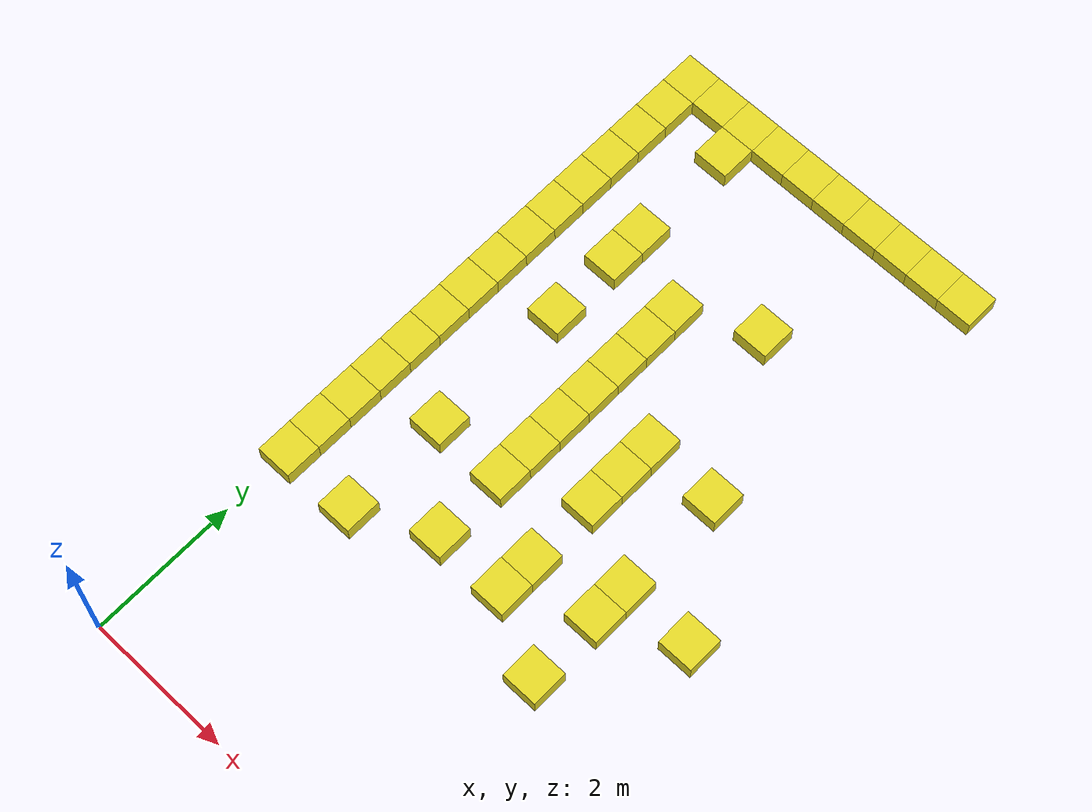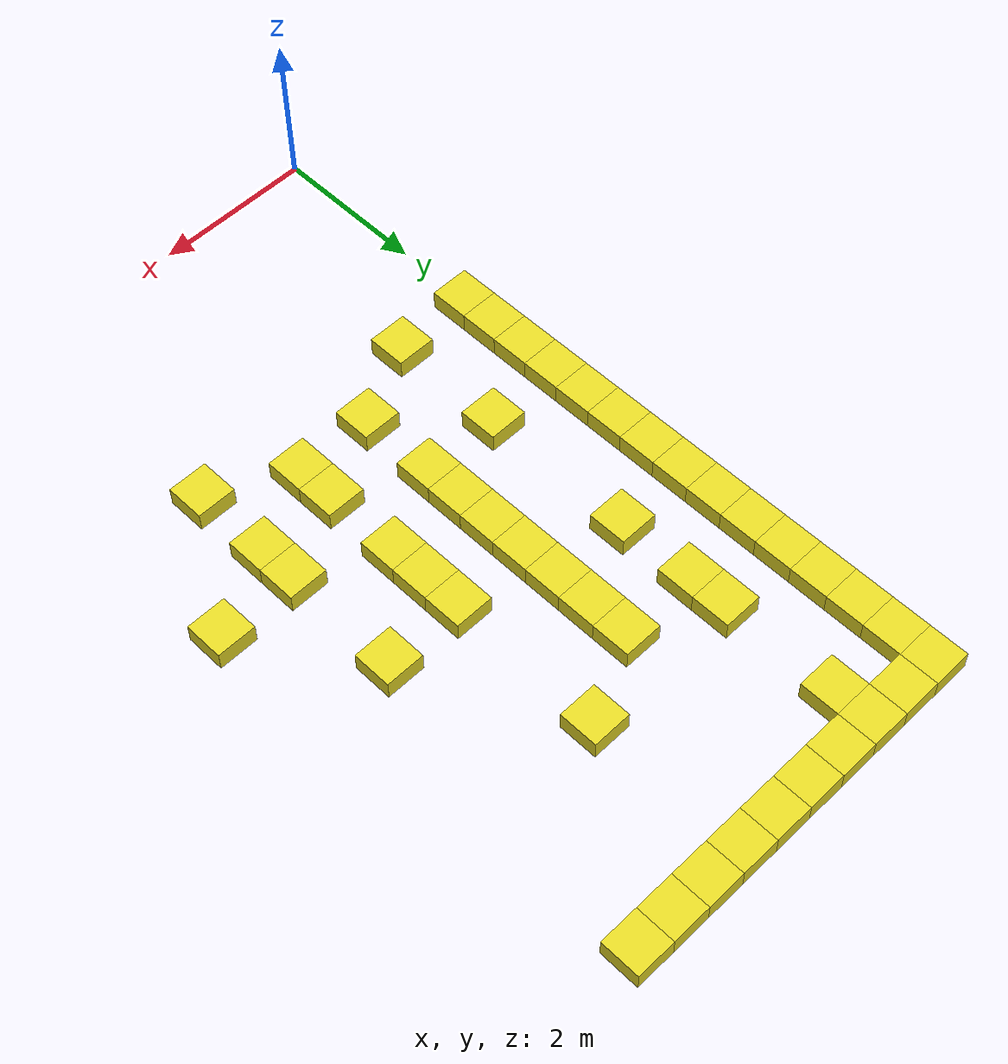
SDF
<sdf version="1.5">
 <world name="default">
  <include><uri>model://sun</uri></include>
  <model name="unit_box_30">
   <pose>0.000000 3.500000 0 0 -0 0</pose>
   <link name="link">
    <inertial>
     <mass>1</mass>
     <inertia><ixx>1</ixx><ixy>0</ixy><ixz>0</ixz><iyy>1</iyy><iyz>0</iyz><izz>1</izz></inertia>
    </inertial>
    <collision name="collision">
     <geometry><box><size>0.500000 0.500000 0.250000</size></box></geometry>
    </collision>
    <visual name="visual">
     <geometry><box><size>0.500000 0.500000 0.250000</size></box></geometry>
     <material>
      <script><uri>file://media/materials/scripts/gazebo.material</uri><name>Gazebo/Yellow</name></script>
     </material>
    </visual>
    <velocity_decay><linear>0</linear><angular>0</angular></velocity_decay>
   </link>
   <static>1</static>
  </model>
  <model name="unit_box_31">
   <pose>0.000000 4.000000 0 0 -0 0</pose>
   <link name="link">
    <inertial>
     <mass>1</mass>
     <inertia><ixx>1</ixx><ixy>0</ixy><ixz>0</ixz><iyy>1</iyy><iyz>0</iyz><izz>1</izz></inertia>
    </inertial>
    <collision name="collision">
     <geometry><box><size>0.500000 0.500000 0.250000</size></box></geometry>
    </collision>
    <visual name="visual">
     <geometry><box><size>0.500000 0.500000 0.250000</size></box></geometry>
     <material>
      <script><uri>file://media/materials/scripts/gazebo.material</uri><name>Gazebo/Yellow</name></script>
     </material>
    </visual>
    <velocity_decay><linear>0</linear><angular>0</angular></velocity_decay>
   </link>
   <static>1</static>
  </model>
  <model name="unit_box_32">
   <pose>0.000000 4.500000 0 0 -0 0</pose>
   <link name="link">
    <inertial>
     <mass>1</mass>
     <inertia><ixx>1</ixx><ixy>0</ixy><ixz>0</ixz><iyy>1</iyy><iyz>0</iyz><izz>1</izz></inertia>
    </inertial>
    <collision name="collision">
     <geometry><box><size>0.500000 0.500000 0.250000</size></box></geometry>
    </collision>
    <visual name="visual">
     <geometry><box><size>0.500000 0.500000 0.250000</size></box></geometry>
     <material>
      <script><uri>file://media/materials/scripts/gazebo.material</uri><name>Gazebo/Yellow</name></script>
     </material>
    </visual>
    <velocity_decay><linear>0</linear><angular>0</angular></velocity_decay>
   </link>
   <static>1</static>
  </model>
  <model name="unit_box_33">
   <pose>0.000000 5.000000 0 0 -0 0</pose>
   <link name="link">
    <inertial>
     <mass>1</mass>
     <inertia><ixx>1</ixx><ixy>0</ixy><ixz>0</ixz><iyy>1</iyy><iyz>0</iyz><izz>1</izz></inertia>
    </inertial>
    <collision name="collision">
     <geometry><box><size>0.500000 0.500000 0.250000</size></box></geometry>
    </collision>
    <visual name="visual">
     <geometry><box><size>0.500000 0.500000 0.250000</size></box></geometry>
     <material>
      <script><uri>file://media/materials/scripts/gazebo.material</uri><name>Gazebo/Yellow</name></script>
     </material>
    </visual>
    <velocity_decay><linear>0</linear><angular>0</angular></velocity_decay>
   </link>
   <static>1</static>
  </model>
  <model name="unit_box_34">
   <pose>0.000000 5.500000 0 0 -0 0</pose>
   <link name="link">
    <inertial>
     <mass>1</mass>
     <inertia><ixx>1</ixx><ixy>0</ixy><ixz>0</ixz><iyy>1</iyy><iyz>0</iyz><izz>1</izz></inertia>
    </inertial>
    <collision name="collision">
     <geometry><box><size>0.500000 0.500000 0.250000</size></box></geometry>
    </collision>
    <visual name="visual">
     <geometry><box><size>0.500000 0.500000 0.250000</size></box></geometry>
     <material>
      <script><uri>file://media/materials/scripts/gazebo.material</uri><name>Gazebo/Yellow</name></script>
     </material>
    </visual>
    <velocity_decay><linear>0</linear><angular>0</angular></velocity_decay>
   </link>
   <static>1</static>
  </model>
  <model name="unit_box_35">
   <pose>0.000000 6.000000 0 0 -0 0</pose>
   <link name="link">
    <inertial>
     <mass>1</mass>
     <inertia><ixx>1</ixx><ixy>0</ixy><ixz>0</ixz><iyy>1</iyy><iyz>0</iyz><izz>1</izz></inertia>
    </inertial>
    <collision name="collision">
     <geometry><box><size>0.500000 0.500000 0.250000</size></box></geometry>
    </collision>
    <visual name="visual">
     <geometry><box><size>0.500000 0.500000 0.250000</size></box></geometry>
     <material>
      <script><uri>file://media/materials/scripts/gazebo.material</uri><name>Gazebo/Yellow</name></script>
     </material>
    </visual>
    <velocity_decay><linear>0</linear><angular>0</angular></velocity_decay>
   </link>
   <static>1</static>
  </model>
  <model name="unit_box_36">
   <pose>0.000000 6.500000 0 0 -0 0</pose>
   <link name="link">
    <inertial>
     <mass>1</mass>
     <inertia><ixx>1</ixx><ixy>0</ixy><ixz>0</ixz><iyy>1</iyy><iyz>0</iyz><izz>1</izz></inertia>
    </inertial>
    <collision name="collision">
     <geometry><box><size>0.500000 0.500000 0.250000</size></box></geometry>
    </collision>
    <visual name="visual">
     <geometry><box><size>0.500000 0.500000 0.250000</size></box></geometry>
     <material>
      <script><uri>file://media/materials/scripts/gazebo.material</uri><name>Gazebo/Yellow</name></script>
     </material>
    </visual>
    <velocity_decay><linear>0</linear><angular>0</angular></velocity_decay>
   </link>
   <static>1</static>
  </model>
  <model name="unit_box_37">
   <pose>0.000000 7.000000 0 0 -0 0</pose>
   <link name="link">
    <inertial>
     <mass>1</mass>
     <inertia><ixx>1</ixx><ixy>0</ixy><ixz>0</ixz><iyy>1</iyy><iyz>0</iyz><izz>1</izz></inertia>
    </inertial>
    <collision name="collision">
     <geometry><box><size>0.500000 0.500000 0.250000</size></box></geometry>
    </collision>
    <visual name="visual">
     <geometry><box><size>0.500000 0.500000 0.250000</size></box></geometry>
     <material>
      <script><uri>file://media/materials/scripts/gazebo.material</uri><name>Gazebo/Yellow</name></script>
     </material>
    </visual>
    <velocity_decay><linear>0</linear><angular>0</angular></velocity_decay>
   </link>
   <static>1</static>
  </model>
  <model name="unit_box_38">
   <pose>0.000000 7.500000 0 0 -0 0</pose>
   <link name="link">
    <inertial>
     <mass>1</mass>
     <inertia><ixx>1</ixx><ixy>0</ixy><ixz>0</ixz><iyy>1</iyy><iyz>0</iyz><izz>1</izz></inertia>
    </inertial>
    <collision name="collision">
     <geometry><box><size>0.500000 0.500000 0.250000</size></box></geometry>
    </collision>
    <visual name="visual">
     <geometry><box><size>0.500000 0.500000 0.250000</size></box></geometry>
     <material>
      <script><uri>file://media/materials/scripts/gazebo.material</uri><name>Gazebo/Yellow</name></script>
     </material>
    </visual>
    <velocity_decay><linear>0</linear><angular>0</angular></velocity_decay>
   </link>
   <static>1</static>
  </model>
  <model name="unit_box_39">
   <pose>0.000000 8.000000 0 0 -0 0</pose>
   <link name="link">
    <inertial>
     <mass>1</mass>
     <inertia><ixx>1</ixx><ixy>0</ixy><ixz>0</ixz><iyy>1</iyy><iyz>0</iyz><izz>1</izz></inertia>
    </inertial>
    <collision name="collision">
     <geometry><box><size>0.500000 0.500000 0.250000</size></box></geometry>
    </collision>
    <visual name="visual">
     <geometry><box><size>0.500000 0.500000 0.250000</size></box></geometry>
     <material>
      <script><uri>file://media/materials/scripts/gazebo.material</uri><name>Gazebo/Yellow</name></script>
     </material>
    </visual>
    <velocity_decay><linear>0</linear><angular>0</angular></velocity_decay>
   </link>
   <static>1</static>
  </model>
  <model name="unit_box_40">
   <pose>0.000000 8.500000 0 0 -0 0</pose>
   <link name="link">
    <inertial>
     <mass>1</mass>
     <inertia><ixx>1</ixx><ixy>0</ixy><ixz>0</ixz><iyy>1</iyy><iyz>0</iyz><izz>1</izz></inertia>
    </inertial>
    <collision name="collision">
     <geometry><box><size>0.500000 0.500000 0.250000</size></box></geometry>
    </collision>
    <visual name="visual">
     <geometry><box><size>0.500000 0.500000 0.250000</size></box></geometry>
     <material>
      <script><uri>file://media/materials/scripts/gazebo.material</uri><name>Gazebo/Yellow</name></script>
     </material>
    </visual>
    <velocity_decay><linear>0</linear><angular>0</angular></velocity_decay>
   </link>
   <static>1</static>
  </model>
  <model name="unit_box_41">
   <pose>0.000000 9.000000 0 0 -0 0</pose>
   <link name="link">
    <inertial>
     <mass>1</mass>
     <inertia><ixx>1</ixx><ixy>0</ixy><ixz>0</ixz><iyy>1</iyy><iyz>0</iyz><izz>1</izz></inertia>
    </inertial>
    <collision name="collision">
     <geometry><box><size>0.500000 0.500000 0.250000</size></box></geometry>
    </collision>
    <visual name="visual">
     <geometry><box><size>0.500000 0.500000 0.250000</size></box></geometry>
     <material>
      <script><uri>file://media/materials/scripts/gazebo.material</uri><name>Gazebo/Yellow</name></script>
     </material>
    </visual>
    <velocity_decay><linear>0</linear><angular>0</angular></velocity_decay>
   </link>
   <static>1</static>
  </model>
  <model name="unit_box_42">
   <pose>0.000000 9.500000 0 0 -0 0</pose>
   <link name="link">
    <inertial>
     <mass>1</mass>
     <inertia><ixx>1</ixx><ixy>0</ixy><ixz>0</ixz><iyy>1</iyy><iyz>0</iyz><izz>1</izz></inertia>
    </inertial>
    <collision name="collision">
     <geometry><box><size>0.500000 0.500000 0.250000</size></box></geometry>
    </collision>
    <visual name="visual">
     <geometry><box><size>0.500000 0.500000 0.250000</size></box></geometry>
     <material>
      <script><uri>file://media/materials/scripts/gazebo.material</uri><name>Gazebo/Yellow</name></script>
     </material>
    </visual>
    <velocity_decay><linear>0</linear><angular>0</angular></velocity_decay>
   </link>
   <static>1</static>
  </model>
  <model name="unit_box_43">
   <pose>0.000000 10.000000 0 0 -0 0</pose>
   <link name="link">
    <inertial>
     <mass>1</mass>
     <inertia><ixx>1</ixx><ixy>0</ixy><ixz>0</ixz><iyy>1</iyy><iyz>0</iyz><izz>1</izz></inertia>
    </inertial>
    <collision name="collision">
     <geometry><box><size>0.500000 0.500000 0.250000</size></box></geometry>
    </collision>
    <visual name="visual">
     <geometry><box><size>0.500000 0.500000 0.250000</size></box></geometry>
     <material>
      <script><uri>file://media/materials/scripts/gazebo.material</uri><name>Gazebo/Yellow</name></script>
     </material>
    </visual>
    <velocity_decay><linear>0</linear><angular>0</angular></velocity_decay>
   </link>
   <static>1</static>
  </model>
  <model name="unit_box_44">
   <pose>0.500000 10.000000 0 0 -0 0</pose>
   <link name="link">
    <inertial>
     <mass>1</mass>
     <inertia><ixx>1</ixx><ixy>0</ixy><ixz>0</ixz><iyy>1</iyy><iyz>0</iyz><izz>1</izz></inertia>
    </inertial>
    <collision name="collision">
     <geometry><box><size>0.500000 0.500000 0.250000</size></box></geometry>
    </collision>
    <visual name="visual">
     <geometry><box><size>0.500000 0.500000 0.250000</size></box></geometry>
     <material>
      <script><uri>file://media/materials/scripts/gazebo.material</uri><name>Gazebo/Yellow</name></script>
     </material>
    </visual>
    <velocity_decay><linear>0</linear><angular>0</angular></velocity_decay>
   </link>
   <static>1</static>
  </model>
  <model name="unit_box_45">
   <pose>1.000000 10.000000 0 0 -0 0</pose>
   <link name="link">
    <inertial>
     <mass>1</mass>
     <inertia><ixx>1</ixx><ixy>0</ixy><ixz>0</ixz><iyy>1</iyy><iyz>0</iyz><izz>1</izz></inertia>
    </inertial>
    <collision name="collision">
     <geometry><box><size>0.500000 0.500000 0.250000</size></box></geometry>
    </collision>
    <visual name="visual">
     <geometry><box><size>0.500000 0.500000 0.250000</size></box></geometry>
     <material>
      <script><uri>file://media/materials/scripts/gazebo.material</uri><name>Gazebo/Yellow</name></script>
     </material>
    </visual>
    <velocity_decay><linear>0</linear><angular>0</angular></velocity_decay>
   </link>
   <static>1</static>
  </model>
  <model name="unit_box_46">
   <pose>1.500000 10.000000 0 0 -0 0</pose>
   <link name="link">
    <inertial>
     <mass>1</mass>
     <inertia><ixx>1</ixx><ixy>0</ixy><ixz>0</ixz><iyy>1</iyy><iyz>0</iyz><izz>1</izz></inertia>
    </inertial>
    <collision name="collision">
     <geometry><box><size>0.500000 0.500000 0.250000</size></box></geometry>
    </collision>
    <visual name="visual">
     <geometry><box><size>0.500000 0.500000 0.250000</size></box></geometry>
     <material>
      <script><uri>file://media/materials/scripts/gazebo.material</uri><name>Gazebo/Yellow</name></script>
     </material>
    </visual>
    <velocity_decay><linear>0</linear><angular>0</angular></velocity_decay>
   </link>
   <static>1</static>
  </model>
  <model name="unit_box_47">
   <pose>2.000000 10.000000 0 0 -0 0</pose>
   <link name="link">
    <inertial>
     <mass>1</mass>
     <inertia><ixx>1</ixx><ixy>0</ixy><ixz>0</ixz><iyy>1</iyy><iyz>0</iyz><izz>1</izz></inertia>
    </inertial>
    <collision name="collision">
     <geometry><box><size>0.500000 0.500000 0.250000</size></box></geometry>
    </collision>
    <visual name="visual">
     <geometry><box><size>0.500000 0.500000 0.250000</size></box></geometry>
     <material>
      <script><uri>file://media/materials/scripts/gazebo.material</uri><name>Gazebo/Yellow</name></script>
     </material>
    </visual>
    <velocity_decay><linear>0</linear><angular>0</angular></velocity_decay>
   </link>
   <static>1</static>
  </model>
  <model name="unit_box_48">
   <pose>2.500000 10.000000 0 0 -0 0</pose>
   <link name="link">
    <inertial>
     <mass>1</mass>
     <inertia><ixx>1</ixx><ixy>0</ixy><ixz>0</ixz><iyy>1</iyy><iyz>0</iyz><izz>1</izz></inertia>
    </inertial>
    <collision name="collision">
     <geometry><box><size>0.500000 0.500000 0.250000</size></box></geometry>
    </collision>
    <visual name="visual">
     <geometry><box><size>0.500000 0.500000 0.250000</size></box></geometry>
     <material>
      <script><uri>file://media/materials/scripts/gazebo.material</uri><name>Gazebo/Yellow</name></script>
     </material>
    </visual>
    <velocity_decay><linear>0</linear><angular>0</angular></velocity_decay>
   </link>
   <static>1</static>
  </model>
  <model name="unit_box_49">
   <pose>3.000000 10.000000 0 0 -0 0</pose>
   <link name="link">
    <inertial>
     <mass>1</mass>
     <inertia><ixx>1</ixx><ixy>0</ixy><ixz>0</ixz><iyy>1</iyy><iyz>0</iyz><izz>1</izz></inertia>
    </inertial>
    <collision name="collision">
     <geometry><box><size>0.500000 0.500000 0.250000</size></box></geometry>
    </collision>
    <visual name="visual">
     <geometry><box><size>0.500000 0.500000 0.250000</size></box></geometry>
     <material>
      <script><uri>file://media/materials/scripts/gazebo.material</uri><name>Gazebo/Yellow</name></script>
     </material>
    </visual>
    <velocity_decay><linear>0</linear><angular>0</angular></velocity_decay>
   </link>
   <static>1</static>
  </model>
  <model name="unit_box_50">
   <pose>3.500000 10.000000 0 0 -0 0</pose>
   <link name="link">
    <inertial>
     <mass>1</mass>
     <inertia><ixx>1</ixx><ixy>0</ixy><ixz>0</ixz><iyy>1</iyy><iyz>0</iyz><izz>1</izz></inertia>
    </inertial>
    <collision name="collision">
     <geometry><box><size>0.500000 0.500000 0.250000</size></box></geometry>
    </collision>
    <visual name="visual">
     <geometry><box><size>0.500000 0.500000 0.250000</size></box></geometry>
     <material>
      <script><uri>file://media/materials/scripts/gazebo.material</uri><name>Gazebo/Yellow</name></script>
     </material>
    </visual>
    <velocity_decay><linear>0</linear><angular>0</angular></velocity_decay>
   </link>
   <static>1</static>
  </model>
  <model name="unit_box_51">
   <pose>4.000000 10.000000 0 0 -0 0</pose>
   <link name="link">
    <inertial>
     <mass>1</mass>
     <inertia><ixx>1</ixx><ixy>0</ixy><ixz>0</ixz><iyy>1</iyy><iyz>0</iyz><izz>1</izz></inertia>
    </inertial>
    <collision name="collision">
     <geometry><box><size>0.500000 0.500000 0.250000</size></box></geometry>
    </collision>
    <visual name="visual">
     <geometry><box><size>0.500000 0.500000 0.250000</size></box></geometry>
     <material>
      <script><uri>file://media/materials/scripts/gazebo.material</uri><name>Gazebo/Yellow</name></script>
     </material>
    </visual>
    <velocity_decay><linear>0</linear><angular>0</angular></velocity_decay>
   </link>
   <static>1</static>
  </model>
  <model name="unit_box_52">
   <pose>4.500000 10.000000 0 0 -0 0</pose>
   <link name="link">
    <inertial>
     <mass>1</mass>
     <inertia><ixx>1</ixx><ixy>0</ixy><ixz>0</ixz><iyy>1</iyy><iyz>0</iyz><izz>1</izz></inertia>
    </inertial>
    <collision name="collision">
     <geometry><box><size>0.500000 0.500000 0.250000</size></box></geometry>
    </collision>
    <visual name="visual">
     <geometry><box><size>0.500000 0.500000 0.250000</size></box></geometry>
     <material>
      <script><uri>file://media/materials/scripts/gazebo.material</uri><name>Gazebo/Yellow</name></script>
     </material>
    </visual>
    <velocity_decay><linear>0</linear><angular>0</angular></velocity_decay>
   </link>
   <static>1</static>
  </model>
  <model name="unit_box_83">
   <pose>3.000000 6.000000 0 0 -0 0</pose>
   <link name="link">
    <inertial>
     <mass>1</mass>
     <inertia><ixx>1</ixx><ixy>0</ixy><ixz>0</ixz><iyy>1</iyy><iyz>0</iyz><izz>1</izz></inertia>
    </inertial>
    <collision name="collision">
     <geometry><box><size>0.500000 0.500000 0.250000</size></box></geometry>
    </collision>
    <visual name="visual">
     <geometry><box><size>0.500000 0.500000 0.250000</size></box></geometry>
     <material>
      <script><uri>file://media/materials/scripts/gazebo.material</uri><name>Gazebo/Yellow</name></script>
     </material>
    </visual>
    <velocity_decay><linear>0</linear><angular>0</angular></velocity_decay>
   </link>
   <static>1</static>
  </model>
  <model name="unit_box_84">
   <pose>1.000000 6.500000 0 0 -0 0</pose>
   <link name="link">
    <inertial>
     <mass>1</mass>
     <inertia><ixx>1</ixx><ixy>0</ixy><ixz>0</ixz><iyy>1</iyy><iyz>0</iyz><izz>1</izz></inertia>
    </inertial>
    <collision name="collision">
     <geometry><box><size>0.500000 0.500000 0.250000</size></box></geometry>
    </collision>
    <visual name="visual">
     <geometry><box><size>0.500000 0.500000 0.250000</size></box></geometry>
     <material>
      <script><uri>file://media/materials/scripts/gazebo.material</uri><name>Gazebo/Yellow</name></script>
     </material>
    </visual>
    <velocity_decay><linear>0</linear><angular>0</angular></velocity_decay>
   </link>
   <static>1</static>
  </model>
  <model name="unit_box_85">
   <pose>2.000000 7.000000 0 0 -0 0</pose>
   <link name="link">
    <inertial>
     <mass>1</mass>
     <inertia><ixx>1</ixx><ixy>0</ixy><ixz>0</ixz><iyy>1</iyy><iyz>0</iyz><izz>1</izz></inertia>
    </inertial>
    <collision name="collision">
     <geometry><box><size>0.500000 0.500000 0.250000</size></box></geometry>
    </collision>
    <visual name="visual">
     <geometry><box><size>0.500000 0.500000 0.250000</size></box></geometry>
     <material>
      <script><uri>file://media/materials/scripts/gazebo.material</uri><name>Gazebo/Yellow</name></script>
     </material>
    </visual>
    <velocity_decay><linear>0</linear><angular>0</angular></velocity_decay>
   </link>
   <static>1</static>
  </model>
  <model name="unit_box_90">
   <pose>3.000000 6.000000 0 0 -0 0</pose>
   <link name="link">
    <inertial>
     <mass>1</mass>
     <inertia><ixx>1</ixx><ixy>0</ixy><ixz>0</ixz><iyy>1</iyy><iyz>0</iyz><izz>1</izz></inertia>
    </inertial>
    <collision name="collision">
     <geometry><box><size>0.500000 0.500000 0.250000</size></box></geometry>
    </collision>
    <visual name="visual">
     <geometry><box><size>0.500000 0.500000 0.250000</size></box></geometry>
     <material>
      <script><uri>file://media/materials/scripts/gazebo.material</uri><name>Gazebo/Yellow</name></script>
     </material>
    </visual>
    <velocity_decay><linear>0</linear><angular>0</angular></velocity_decay>
   </link>
   <static>1</static>
  </model>
  <model name="unit_box_91">
   <pose>2.000000 6.000000 0 0 -0 0</pose>
   <link name="link">
    <inertial>
     <mass>1</mass>
     <inertia><ixx>1</ixx><ixy>0</ixy><ixz>0</ixz><iyy>1</iyy><iyz>0</iyz><izz>1</izz></inertia>
    </inertial>
    <collision name="collision">
     <geometry><box><size>0.500000 0.500000 0.250000</size></box></geometry>
    </collision>
    <visual name="visual">
     <geometry><box><size>0.500000 0.500000 0.250000</size></box></geometry>
     <material>
      <script><uri>file://media/materials/scripts/gazebo.material</uri><name>Gazebo/Yellow</name></script>
     </material>
    </visual>
    <velocity_decay><linear>0</linear><angular>0</angular></velocity_decay>
   </link>
   <static>1</static>
  </model>
  <model name="unit_box_92">
   <pose>4.000000 6.000000 0 0 -0 0</pose>
   <link name="link">
    <inertial>
     <mass>1</mass>
     <inertia><ixx>1</ixx><ixy>0</ixy><ixz>0</ixz><iyy>1</iyy><iyz>0</iyz><izz>1</izz></inertia>
    </inertial>
    <collision name="collision">
     <geometry><box><size>0.500000 0.500000 0.250000</size></box></geometry>
    </collision>
    <visual name="visual">
     <geometry><box><size>0.500000 0.500000 0.250000</size></box></geometry>
     <material>
      <script><uri>file://media/materials/scripts/gazebo.material</uri><name>Gazebo/Yellow</name></script>
     </material>
    </visual>
    <velocity_decay><linear>0</linear><angular>0</angular></velocity_decay>
   </link>
   <static>1</static>
  </model>
  <model name="unit_box_93">
   <pose>4.000000 6.000000 0 0 -0 0</pose>
   <link name="link">
    <inertial>
     <mass>1</mass>
     <inertia><ixx>1</ixx><ixy>0</ixy><ixz>0</ixz><iyy>1</iyy><iyz>0</iyz><izz>1</izz></inertia>
    </inertial>
    <collision name="collision">
     <geometry><box><size>0.500000 0.500000 0.250000</size></box></geometry>
    </collision>
    <visual name="visual">
     <geometry><box><size>0.500000 0.500000 0.250000</size></box></geometry>
     <material>
      <script><uri>file://media/materials/scripts/gazebo.material</uri><name>Gazebo/Yellow</name></script>
     </material>
    </visual>
    <velocity_decay><linear>0</linear><angular>0</angular></velocity_decay>
   </link>
   <static>1</static>
  </model>
  <model name="unit_box_96">
   <pose>3.000000 6.000000 0 0 -0 0</pose>
   <link name="link">
    <inertial>
     <mass>1</mass>
     <inertia><ixx>1</ixx><ixy>0</ixy><ixz>0</ixz><iyy>1</iyy><iyz>0</iyz><izz>1</izz></inertia>
    </inertial>
    <collision name="collision">
     <geometry><box><size>0.500000 0.500000 0.250000</size></box></geometry>
    </collision>
    <visual name="visual">
     <geometry><box><size>0.500000 0.500000 0.250000</size></box></geometry>
     <material>
      <script><uri>file://media/materials/scripts/gazebo.material</uri><name>Gazebo/Yellow</name></script>
     </material>
    </visual>
    <velocity_decay><linear>0</linear><angular>0</angular></velocity_decay>
   </link>
   <static>1</static>
  </model>
  <model name="unit_box_97">
   <pose>0.000000 6.000000 0 0 -0 0</pose>
   <link name="link">
    <inertial>
     <mass>1</mass>
     <inertia><ixx>1</ixx><ixy>0</ixy><ixz>0</ixz><iyy>1</iyy><iyz>0</iyz><izz>1</izz></inertia>
    </inertial>
    <collision name="collision">
     <geometry><box><size>0.500000 0.500000 0.250000</size></box></geometry>
    </collision>
    <visual name="visual">
     <geometry><box><size>0.500000 0.500000 0.250000</size></box></geometry>
     <material>
      <script><uri>file://media/materials/scripts/gazebo.material</uri><name>Gazebo/Yellow</name></script>
     </material>
    </visual>
    <velocity_decay><linear>0</linear><angular>0</angular></velocity_decay>
   </link>
   <static>1</static>
  </model>
  <model name="unit_box_98">
   <pose>2.000000 5.500000 0 0 -0 0</pose>
   <link name="link">
    <inertial>
     <mass>1</mass>
     <inertia><ixx>1</ixx><ixy>0</ixy><ixz>0</ixz><iyy>1</iyy><iyz>0</iyz><izz>1</izz></inertia>
    </inertial>
    <collision name="collision">
     <geometry><box><size>0.500000 0.500000 0.250000</size></box></geometry>
    </collision>
    <visual name="visual">
     <geometry><box><size>0.500000 0.500000 0.250000</size></box></geometry>
     <material>
      <script><uri>file://media/materials/scripts/gazebo.material</uri><name>Gazebo/Yellow</name></script>
     </material>
    </visual>
    <velocity_decay><linear>0</linear><angular>0</angular></velocity_decay>
   </link>
   <static>1</static>
  </model>
  <model name="unit_box_100">
   <pose>2.000000 4.500000 0 0 -0 0</pose>
   <link name="link">
    <inertial>
     <mass>1</mass>
     <inertia><ixx>1</ixx><ixy>0</ixy><ixz>0</ixz><iyy>1</iyy><iyz>0</iyz><izz>1</izz></inertia>
    </inertial>
    <collision name="collision">
     <geometry><box><size>0.500000 0.500000 0.250000</size></box></geometry>
    </collision>
    <visual name="visual">
     <geometry><box><size>0.500000 0.500000 0.250000</size></box></geometry>
     <material>
      <script><uri>file://media/materials/scripts/gazebo.material</uri><name>Gazebo/Yellow</name></script>
     </material>
    </visual>
    <velocity_decay><linear>0</linear><angular>0</angular></velocity_decay>
   </link>
   <static>1</static>
  </model>
  <model name="unit_box_104">
   <pose>1.000000 9.500000 0 0 -0 0</pose>
   <link name="link">
    <inertial>
     <mass>1</mass>
     <inertia><ixx>1</ixx><ixy>0</ixy><ixz>0</ixz><iyy>1</iyy><iyz>0</iyz><izz>1</izz></inertia>
    </inertial>
    <collision name="collision">
     <geometry><box><size>0.500000 0.500000 0.250000</size></box></geometry>
    </collision>
    <visual name="visual">
     <geometry><box><size>0.500000 0.500000 0.250000</size></box></geometry>
     <material>
      <script><uri>file://media/materials/scripts/gazebo.material</uri><name>Gazebo/Yellow</name></script>
     </material>
    </visual>
    <velocity_decay><linear>0</linear><angular>0</angular></velocity_decay>
   </link>
   <static>1</static>
  </model>
  <model name="unit_box_108">
   <pose>3.000000 8.000000 0 0 -0 0</pose>
   <link name="link">
    <inertial>
     <mass>1</mass>
     <inertia><ixx>1</ixx><ixy>0</ixy><ixz>0</ixz><iyy>1</iyy><iyz>0</iyz><izz>1</izz></inertia>
    </inertial>
    <collision name="collision">
     <geometry><box><size>0.500000 0.500000 0.250000</size></box></geometry>
    </collision>
    <visual name="visual">
     <geometry><box><size>0.500000 0.500000 0.250000</size></box></geometry>
     <material>
      <script><uri>file://media/materials/scripts/gazebo.material</uri><name>Gazebo/Yellow</name></script>
     </material>
    </visual>
    <velocity_decay><linear>0</linear><angular>0</angular></velocity_decay>
   </link>
   <static>1</static>
  </model>
  <model name="unit_box_109">
   <pose>1.000000 8.000000 0 0 -0 0</pose>
   <link name="link">
    <inertial>
     <mass>1</mass>
     <inertia><ixx>1</ixx><ixy>0</ixy><ixz>0</ixz><iyy>1</iyy><iyz>0</iyz><izz>1</izz></inertia>
    </inertial>
    <collision name="collision">
     <geometry><box><size>0.500000 0.500000 0.250000</size></box></geometry>
    </collision>
    <visual name="visual">
     <geometry><box><size>0.500000 0.500000 0.250000</size></box></geometry>
     <material>
      <script><uri>file://media/materials/scripts/gazebo.material</uri><name>Gazebo/Yellow</name></script>
     </material>
    </visual>
    <velocity_decay><linear>0</linear><angular>0</angular></velocity_decay>
   </link>
   <static>1</static>
  </model>
  <model name="unit_box_110">
   <pose>1.000000 7.500000 0 0 -0 0</pose>
   <link name="link">
    <inertial>
     <mass>1</mass>
     <inertia><ixx>1</ixx><ixy>0</ixy><ixz>0</ixz><iyy>1</iyy><iyz>0</iyz><izz>1</izz></inertia>
    </inertial>
    <collision name="collision">
     <geometry><box><size>0.500000 0.500000 0.250000</size></box></geometry>
    </collision>
    <visual name="visual">
     <geometry><box><size>0.500000 0.500000 0.250000</size></box></geometry>
     <material>
      <script><uri>file://media/materials/scripts/gazebo.material</uri><name>Gazebo/Yellow</name></script>
     </material>
    </visual>
    <velocity_decay><linear>0</linear><angular>0</angular></velocity_decay>
   </link>
   <static>1</static>
  </model>
  <model name="unit_box_114">
   <pose>3.000000 5.500000 0 0 -0 0</pose>
   <link name="link">
    <inertial>
     <mass>1</mass>
     <inertia><ixx>1</ixx><ixy>0</ixy><ixz>0</ixz><iyy>1</iyy><iyz>0</iyz><izz>1</izz></inertia>
    </inertial>
    <collision name="collision">
     <geometry><box><size>0.500000 0.500000 0.250000</size></box></geometry>
    </collision>
    <visual name="visual">
     <geometry><box><size>0.500000 0.500000 0.250000</size></box></geometry>
     <material>
      <script><uri>file://media/materials/scripts/gazebo.material</uri><name>Gazebo/Yellow</name></script>
     </material>
    </visual>
    <velocity_decay><linear>0</linear><angular>0</angular></velocity_decay>
   </link>
   <static>1</static>
  </model>
  <model name="unit_box_117">
   <pose>3.000000 4.000000 0 0 -0 0</pose>
   <link name="link">
    <inertial>
     <mass>1</mass>
     <inertia><ixx>1</ixx><ixy>0</ixy><ixz>0</ixz><iyy>1</iyy><iyz>0</iyz><izz>1</izz></inertia>
    </inertial>
    <collision name="collision">
     <geometry><box><size>0.500000 0.500000 0.250000</size></box></geometry>
    </collision>
    <visual name="visual">
     <geometry><box><size>0.500000 0.500000 0.250000</size></box></geometry>
     <material>
      <script><uri>file://media/materials/scripts/gazebo.material</uri><name>Gazebo/Yellow</name></script>
     </material>
    </visual>
    <velocity_decay><linear>0</linear><angular>0</angular></velocity_decay>
   </link>
   <static>1</static>
  </model>
  <model name="unit_box_118">
   <pose>2.000000 3.500000 0 0 -0 0</pose>
   <link name="link">
    <inertial>
     <mass>1</mass>
     <inertia><ixx>1</ixx><ixy>0</ixy><ixz>0</ixz><iyy>1</iyy><iyz>0</iyz><izz>1</izz></inertia>
    </inertial>
    <collision name="collision">
     <geometry><box><size>0.500000 0.500000 0.250000</size></box></geometry>
    </collision>
    <visual name="visual">
     <geometry><box><size>0.500000 0.500000 0.250000</size></box></geometry>
     <material>
      <script><uri>file://media/materials/scripts/gazebo.material</uri><name>Gazebo/Yellow</name></script>
     </material>
    </visual>
    <velocity_decay><linear>0</linear><angular>0</angular></velocity_decay>
   </link>
   <static>1</static>
  </model>
  <model name="unit_box_120">
   <pose>0.000000 8.000000 0 0 -0 0</pose>
   <link name="link">
    <inertial>
     <mass>1</mass>
     <inertia><ixx>1</ixx><ixy>0</ixy><ixz>0</ixz><iyy>1</iyy><iyz>0</iyz><izz>1</izz></inertia>
    </inertial>
    <collision name="collision">
     <geometry><box><size>0.500000 0.500000 0.250000</size></box></geometry>
    </collision>
    <visual name="visual">
     <geometry><box><size>0.500000 0.500000 0.250000</size></box></geometry>
     <material>
      <script><uri>file://media/materials/scripts/gazebo.material</uri><name>Gazebo/Yellow</name></script>
     </material>
    </visual>
    <velocity_decay><linear>0</linear><angular>0</angular></velocity_decay>
   </link>
   <static>1</static>
  </model>
  <model name="unit_box_121">
   <pose>2.000000 7.500000 0 0 -0 0</pose>
   <link name="link">
    <inertial>
     <mass>1</mass>
     <inertia><ixx>1</ixx><ixy>0</ixy><ixz>0</ixz><iyy>1</iyy><iyz>0</iyz><izz>1</izz></inertia>
    </inertial>
    <collision name="collision">
     <geometry><box><size>0.500000 0.500000 0.250000</size></box></geometry>
    </collision>
    <visual name="visual">
     <geometry><box><size>0.500000 0.500000 0.250000</size></box></geometry>
     <material>
      <script><uri>file://media/materials/scripts/gazebo.material</uri><name>Gazebo/Yellow</name></script>
     </material>
    </visual>
    <velocity_decay><linear>0</linear><angular>0</angular></velocity_decay>
   </link>
   <static>1</static>
  </model>
  <model name="unit_box_123">
   <pose>2.000000 6.500000 0 0 -0 0</pose>
   <link name="link">
    <inertial>
     <mass>1</mass>
     <inertia><ixx>1</ixx><ixy>0</ixy><ixz>0</ixz><iyy>1</iyy><iyz>0</iyz><izz>1</izz></inertia>
    </inertial>
    <collision name="collision">
     <geometry><box><size>0.500000 0.500000 0.250000</size></box></geometry>
    </collision>
    <visual name="visual">
     <geometry><box><size>0.500000 0.500000 0.250000</size></box></geometry>
     <material>
      <script><uri>file://media/materials/scripts/gazebo.material</uri><name>Gazebo/Yellow</name></script>
     </material>
    </visual>
    <velocity_decay><linear>0</linear><angular>0</angular></velocity_decay>
   </link>
   <static>1</static>
  </model>
  <model name="unit_box_127">
   <pose>5.000000 4.500000 0 0 -0 0</pose>
   <link name="link">
    <inertial>
     <mass>1</mass>
     <inertia><ixx>1</ixx><ixy>0</ixy><ixz>0</ixz><iyy>1</iyy><iyz>0</iyz><izz>1</izz></inertia>
    </inertial>
    <collision name="collision">
     <geometry><box><size>0.500000 0.500000 0.250000</size></box></geometry>
    </collision>
    <visual name="visual">
     <geometry><box><size>0.500000 0.500000 0.250000</size></box></geometry>
     <material>
      <script><uri>file://media/materials/scripts/gazebo.material</uri><name>Gazebo/Yellow</name></script>
     </material>
    </visual>
    <velocity_decay><linear>0</linear><angular>0</angular></velocity_decay>
   </link>
   <static>1</static>
  </model>
  <model name="unit_box_128">
   <pose>0.000000 4.000000 0 0 -0 0</pose>
   <link name="link">
    <inertial>
     <mass>1</mass>
     <inertia><ixx>1</ixx><ixy>0</ixy><ixz>0</ixz><iyy>1</iyy><iyz>0</iyz><izz>1</izz></inertia>
    </inertial>
    <collision name="collision">
     <geometry><box><size>0.500000 0.500000 0.250000</size></box></geometry>
    </collision>
    <visual name="visual">
     <geometry><box><size>0.500000 0.500000 0.250000</size></box></geometry>
     <material>
      <script><uri>file://media/materials/scripts/gazebo.material</uri><name>Gazebo/Yellow</name></script>
     </material>
    </visual>
    <velocity_decay><linear>0</linear><angular>0</angular></velocity_decay>
   </link>
   <static>1</static>
  </model>
  <model name="unit_box_136">
   <pose>1.000000 8.000000 0 0 -0 0</pose>
   <link name="link">
    <inertial>
     <mass>1</mass>
     <inertia><ixx>1</ixx><ixy>0</ixy><ixz>0</ixz><iyy>1</iyy><iyz>0</iyz><izz>1</izz></inertia>
    </inertial>
    <collision name="collision">
     <geometry><box><size>0.500000 0.500000 0.250000</size></box></geometry>
    </collision>
    <visual name="visual">
     <geometry><box><size>0.500000 0.500000 0.250000</size></box></geometry>
     <material>
      <script><uri>file://media/materials/scripts/gazebo.material</uri><name>Gazebo/Yellow</name></script>
     </material>
    </visual>
    <velocity_decay><linear>0</linear><angular>0</angular></velocity_decay>
   </link>
   <static>1</static>
  </model>
  <model name="unit_box_137">
   <pose>3.000000 5.000000 0 0 -0 0</pose>
   <link name="link">
    <inertial>
     <mass>1</mass>
     <inertia><ixx>1</ixx><ixy>0</ixy><ixz>0</ixz><iyy>1</iyy><iyz>0</iyz><izz>1</izz></inertia>
    </inertial>
    <collision name="collision">
     <geometry><box><size>0.500000 0.500000 0.250000</size></box></geometry>
    </collision>
    <visual name="visual">
     <geometry><box><size>0.500000 0.500000 0.250000</size></box></geometry>
     <material>
      <script><uri>file://media/materials/scripts/gazebo.material</uri><name>Gazebo/Yellow</name></script>
     </material>
    </visual>
    <velocity_decay><linear>0</linear><angular>0</angular></velocity_decay>
   </link>
   <static>1</static>
  </model>
  <model name="unit_box_138">
   <pose>2.000000 5.000000 0 0 -0 0</pose>
   <link name="link">
    <inertial>
     <mass>1</mass>
     <inertia><ixx>1</ixx><ixy>0</ixy><ixz>0</ixz><iyy>1</iyy><iyz>0</iyz><izz>1</izz></inertia>
    </inertial>
    <collision name="collision">
     <geometry><box><size>0.500000 0.500000 0.250000</size></box></geometry>
    </collision>
    <visual name="visual">
     <geometry><box><size>0.500000 0.500000 0.250000</size></box></geometry>
     <material>
      <script><uri>file://media/materials/scripts/gazebo.material</uri><name>Gazebo/Yellow</name></script>
     </material>
    </visual>
    <velocity_decay><linear>0</linear><angular>0</angular></velocity_decay>
   </link>
   <static>1</static>
  </model>
  <model name="unit_box_142">
   <pose>1.000000 3.000000 0 0 -0 0</pose>
   <link name="link">
    <inertial>
     <mass>1</mass>
     <inertia><ixx>1</ixx><ixy>0</ixy><ixz>0</ixz><iyy>1</iyy><iyz>0</iyz><izz>1</izz></inertia>
    </inertial>
    <collision name="collision">
     <geometry><box><size>0.500000 0.500000 0.250000</size></box></geometry>
    </collision>
    <visual name="visual">
     <geometry><box><size>0.500000 0.500000 0.250000</size></box></geometry>
     <material>
      <script><uri>file://media/materials/scripts/gazebo.material</uri><name>Gazebo/Yellow</name></script>
     </material>
    </visual>
    <velocity_decay><linear>0</linear><angular>0</angular></velocity_decay>
   </link>
   <static>1</static>
  </model>
  <model name="unit_box_143">
   <pose>1.000000 4.500000 0 0 -0 0</pose>
   <link name="link">
    <inertial>
     <mass>1</mass>
     <inertia><ixx>1</ixx><ixy>0</ixy><ixz>0</ixz><iyy>1</iyy><iyz>0</iyz><izz>1</izz></inertia>
    </inertial>
    <collision name="collision">
     <geometry><box><size>0.500000 0.500000 0.250000</size></box></geometry>
    </collision>
    <visual name="visual">
     <geometry><box><size>0.500000 0.500000 0.250000</size></box></geometry>
     <material>
      <script><uri>file://media/materials/scripts/gazebo.material</uri><name>Gazebo/Yellow</name></script>
     </material>
    </visual>
    <velocity_decay><linear>0</linear><angular>0</angular></velocity_decay>
   </link>
   <static>1</static>
  </model>
  <model name="unit_box_144">
   <pose>2.000000 4.500000 0 0 -0 0</pose>
   <link name="link">
    <inertial>
     <mass>1</mass>
     <inertia><ixx>1</ixx><ixy>0</ixy><ixz>0</ixz><iyy>1</iyy><iyz>0</iyz><izz>1</izz></inertia>
    </inertial>
    <collision name="collision">
     <geometry><box><size>0.500000 0.500000 0.250000</size></box></geometry>
    </collision>
    <visual name="visual">
     <geometry><box><size>0.500000 0.500000 0.250000</size></box></geometry>
     <material>
      <script><uri>file://media/materials/scripts/gazebo.material</uri><name>Gazebo/Yellow</name></script>
     </material>
    </visual>
    <velocity_decay><linear>0</linear><angular>0</angular></velocity_decay>
   </link>
   <static>1</static>
  </model>
  <model name="unit_box_146">
   <pose>2.000000 4.500000 0 0 -0 0</pose>
   <link name="link">
    <inertial>
     <mass>1</mass>
     <inertia><ixx>1</ixx><ixy>0</ixy><ixz>0</ixz><iyy>1</iyy><iyz>0</iyz><izz>1</izz></inertia>
    </inertial>
    <collision name="collision">
     <geometry><box><size>0.500000 0.500000 0.250000</size></box></geometry>
    </collision>
    <visual name="visual">
     <geometry><box><size>0.500000 0.500000 0.250000</size></box></geometry>
     <material>
      <script><uri>file://media/materials/scripts/gazebo.material</uri><name>Gazebo/Yellow</name></script>
     </material>
    </visual>
    <velocity_decay><linear>0</linear><angular>0</angular></velocity_decay>
   </link>
   <static>1</static>
  </model>
  <model name="unit_box_148">
   <pose>4.000000 4.500000 0 0 -0 0</pose>
   <link name="link">
    <inertial>
     <mass>1</mass>
     <inertia><ixx>1</ixx><ixy>0</ixy><ixz>0</ixz><iyy>1</iyy><iyz>0</iyz><izz>1</izz></inertia>
    </inertial>
    <collision name="collision">
     <geometry><box><size>0.500000 0.500000 0.250000</size></box></geometry>
    </collision>
    <visual name="visual">
     <geometry><box><size>0.500000 0.500000 0.250000</size></box></geometry>
     <material>
      <script><uri>file://media/materials/scripts/gazebo.material</uri><name>Gazebo/Yellow</name></script>
     </material>
    </visual>
    <velocity_decay><linear>0</linear><angular>0</angular></velocity_decay>
   </link>
   <static>1</static>
  </model>
  <model name="unit_box_149">
   <pose>4.000000 4.000000 0 0 -0 0</pose>
   <link name="link">
    <inertial>
     <mass>1</mass>
     <inertia><ixx>1</ixx><ixy>0</ixy><ixz>0</ixz><iyy>1</iyy><iyz>0</iyz><izz>1</izz></inertia>
    </inertial>
    <collision name="collision">
     <geometry><box><size>0.500000 0.500000 0.250000</size></box></geometry>
    </collision>
    <visual name="visual">
     <geometry><box><size>0.500000 0.500000 0.250000</size></box></geometry>
     <material>
      <script><uri>file://media/materials/scripts/gazebo.material</uri><name>Gazebo/Yellow</name></script>
     </material>
    </visual>
    <velocity_decay><linear>0</linear><angular>0</angular></velocity_decay>
   </link>
   <static>1</static>
  </model>
  <model name="unit_box_150">
   <pose>3.000000 3.500000 0 0 -0 0</pose>
   <link name="link">
    <inertial>
     <mass>1</mass>
     <inertia><ixx>1</ixx><ixy>0</ixy><ixz>0</ixz><iyy>1</iyy><iyz>0</iyz><izz>1</izz></inertia>
    </inertial>
    <collision name="collision">
     <geometry><box><size>0.500000 0.500000 0.250000</size></box></geometry>
    </collision>
    <visual name="visual">
     <geometry><box><size>0.500000 0.500000 0.250000</size></box></geometry>
     <material>
      <script><uri>file://media/materials/scripts/gazebo.material</uri><name>Gazebo/Yellow</name></script>
     </material>
    </visual>
    <velocity_decay><linear>0</linear><angular>0</angular></velocity_decay>
   </link>
   <static>1</static>
  </model>
  <model name="unit_box_151">
   <pose>4.000000 3.000000 0 0 -0 0</pose>
   <link name="link">
    <inertial>
     <mass>1</mass>
     <inertia><ixx>1</ixx><ixy>0</ixy><ixz>0</ixz><iyy>1</iyy><iyz>0</iyz><izz>1</izz></inertia>
    </inertial>
    <collision name="collision">
     <geometry><box><size>0.500000 0.500000 0.250000</size></box></geometry>
    </collision>
    <visual name="visual">
     <geometry><box><size>0.500000 0.500000 0.250000</size></box></geometry>
     <material>
      <script><uri>file://media/materials/scripts/gazebo.material</uri><name>Gazebo/Yellow</name></script>
     </material>
    </visual>
    <velocity_decay><linear>0</linear><angular>0</angular></velocity_decay>
   </link>
   <static>1</static>
  </model>
  <model name="unit_box_158">
   <pose>0.000000 3.000000 0 0 -0 0</pose>
   <link name="link">
    <inertial>
     <mass>1</mass>
     <inertia><ixx>1</ixx><ixy>0</ixy><ixz>0</ixz><iyy>1</iyy><iyz>0</iyz><izz>1</izz></inertia>
    </inertial>
    <collision name="collision">
     <geometry><box><size>0.500000 0.500000 0.250000</size></box></geometry>
    </collision>
    <visual name="visual">
     <geometry><box><size>0.500000 0.500000 0.250000</size></box></geometry>
     <material>
      <script><uri>file://media/materials/scripts/gazebo.material</uri><name>Gazebo/Yellow</name></script>
     </material>
    </visual>
    <velocity_decay><linear>0</linear><angular>0</angular></velocity_decay>
   </link>
   <static>1</static>
  </model>
 </world>
</sdf>
